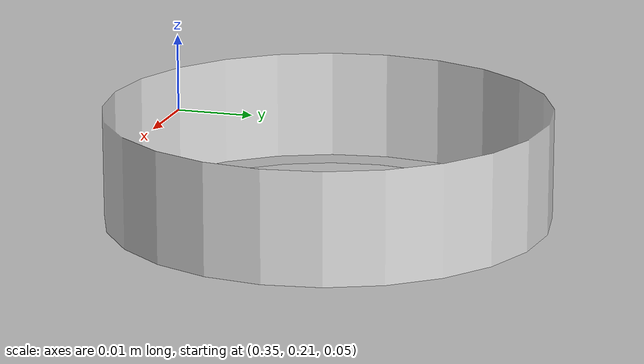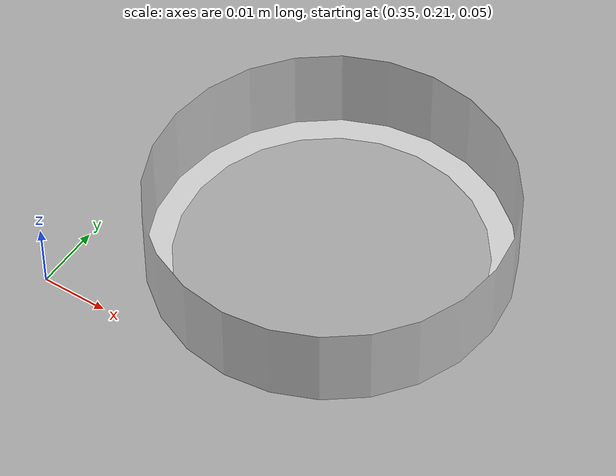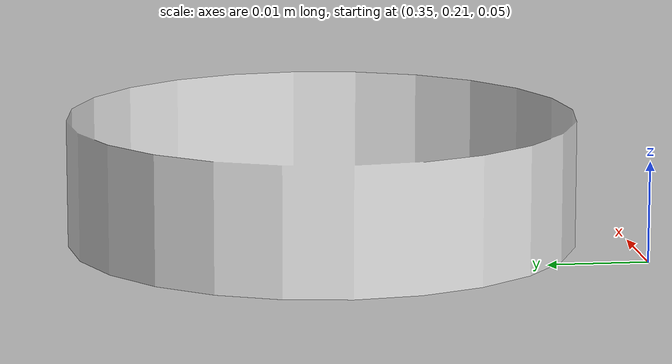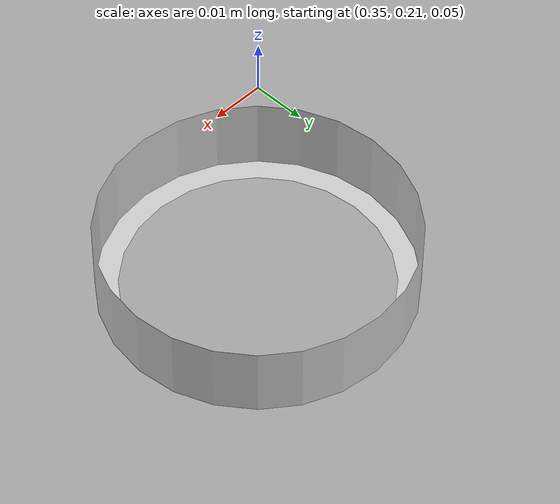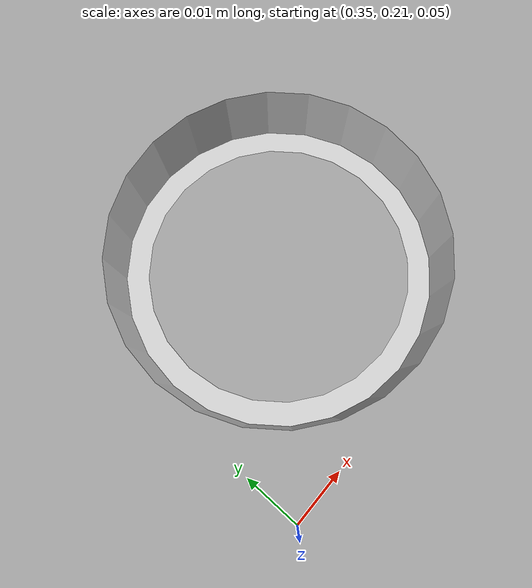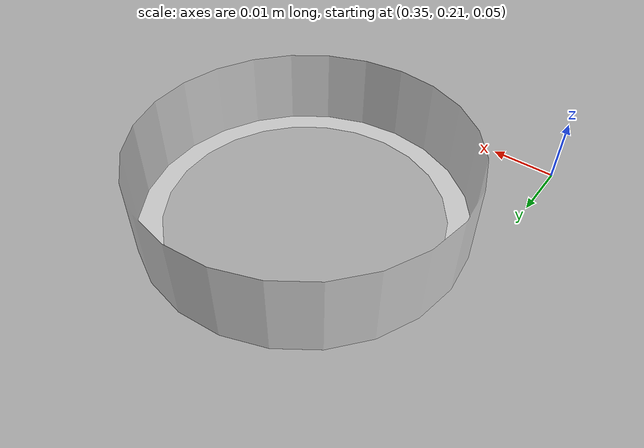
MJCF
<mujoco model="original-40">
  <default>
    <default class="visual">
      <geom group="2" type="mesh" contype="0" conaffinity="0"/>
    </default>
    <default class="collision">
      <geom group="3" type="mesh"/>
    </default>
  </default>
  <asset>
    <material name="material_0_0" specular="0.06666666666666667" shininess="0.03" rgba="0.8 0.8 0.8 1"/>
    <mesh file="original-40.obj"/>
  </asset>
  <worldbody>
    <body name="original-40">
      <geom material="material_0_0" mesh="original-40" class="visual"/>
      <geom mesh="original-40" class="collision"/>
    </body>
  </worldbody>
</mujoco>
